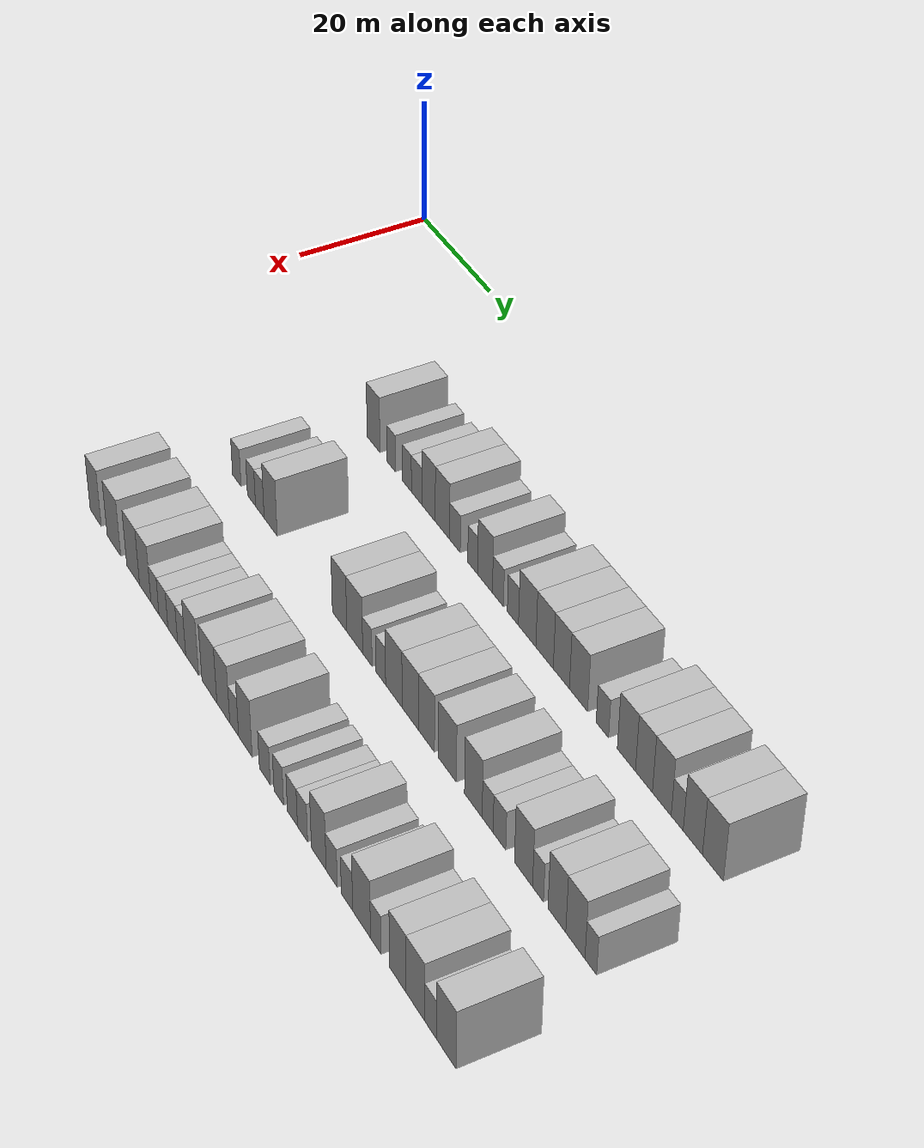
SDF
<sdf version="1.6">
 <world name="default">
  <model name="building_68">
   <static>1</static>
   <pose>25.0000 43.5240 0 0.000000 0.000000 0.000000</pose>
   <link name="link">
    <pose>0 0 4.50 0 0 0</pose>
    <collision name="collision"><geometry><box><size>10.0000 3.7559 9.0000</size></box></geometry></collision>
    <visual name="visual">
     <cast_shadows>0</cast_shadows>
     <geometry><box><size>10.0000 3.7559 9.0000</size></box></geometry>
     <material>
      <script>
       <uri>model://HANNAS_wall/materials/scripts</uri>
       <uri>model://HANNAS_wall/materials/textures</uri>
       <name>vrc/HANNAS_wall</name>
      </script>
     </material>
    </visual>
   </link>
  </model>
  <model name="building_69">
   <static>1</static>
   <pose>25.0000 48.6498 0 0.000000 0.000000 0.000000</pose>
   <link name="link">
    <pose>0 0 3.00 0 0 0</pose>
    <collision name="collision"><geometry><box><size>10.0000 2.4956 6.0000</size></box></geometry></collision>
    <visual name="visual">
     <cast_shadows>0</cast_shadows>
     <geometry><box><size>10.0000 2.4956 6.0000</size></box></geometry>
     <material>
      <script>
       <uri>model://HANNAS_wall/materials/scripts</uri>
       <uri>model://HANNAS_wall/materials/textures</uri>
       <name>vrc/HANNAS_wall</name>
      </script>
     </material>
    </visual>
   </link>
  </model>
  <model name="building_70">
   <static>1</static>
   <pose>25.0000 53.1638 0 0.000000 0.000000 0.000000</pose>
   <link name="link">
    <pose>0 0 3.00 0 0 0</pose>
    <collision name="collision"><geometry><box><size>10.0000 2.5325 6.0000</size></box></geometry></collision>
    <visual name="visual">
     <cast_shadows>0</cast_shadows>
     <geometry><box><size>10.0000 2.5325 6.0000</size></box></geometry>
     <material>
      <script>
       <uri>model://HANNAS_wall/materials/scripts</uri>
       <uri>model://HANNAS_wall/materials/textures</uri>
       <name>vrc/HANNAS_wall</name>
      </script>
     </material>
    </visual>
   </link>
  </model>
  <model name="building_71">
   <static>1</static>
   <pose>25.0000 55.8989 0 0.000000 0.000000 0.000000</pose>
   <link name="link">
    <pose>0 0 3.00 0 0 0</pose>
    <collision name="collision"><geometry><box><size>10.0000 2.9376 6.0000</size></box></geometry></collision>
    <visual name="visual">
     <cast_shadows>0</cast_shadows>
     <geometry><box><size>10.0000 2.9376 6.0000</size></box></geometry>
     <material>
      <script>
       <uri>model://HANNAS_wall/materials/scripts</uri>
       <uri>model://HANNAS_wall/materials/textures</uri>
       <name>vrc/HANNAS_wall</name>
      </script>
     </material>
    </visual>
   </link>
  </model>
  <model name="building_72">
   <static>1</static>
   <pose>25.0000 59.2158 0 0.000000 0.000000 0.000000</pose>
   <link name="link">
    <pose>0 0 4.50 0 0 0</pose>
    <collision name="collision"><geometry><box><size>10.0000 3.6962 9.0000</size></box></geometry></collision>
    <visual name="visual">
     <cast_shadows>0</cast_shadows>
     <geometry><box><size>10.0000 3.6962 9.0000</size></box></geometry>
     <material>
      <script>
       <uri>model://HANNAS_wall/materials/scripts</uri>
       <uri>model://HANNAS_wall/materials/textures</uri>
       <name>vrc/HANNAS_wall</name>
      </script>
     </material>
    </visual>
   </link>
  </model>
  <model name="building_73">
   <static>1</static>
   <pose>25.0000 63.0143 0 0.000000 0.000000 0.000000</pose>
   <link name="link">
    <pose>0 0 4.50 0 0 0</pose>
    <collision name="collision"><geometry><box><size>10.0000 3.9007 9.0000</size></box></geometry></collision>
    <visual name="visual">
     <cast_shadows>0</cast_shadows>
     <geometry><box><size>10.0000 3.9007 9.0000</size></box></geometry>
     <material>
      <script>
       <uri>model://HANNAS_wall/materials/scripts</uri>
       <uri>model://HANNAS_wall/materials/textures</uri>
       <name>vrc/HANNAS_wall</name>
      </script>
     </material>
    </visual>
   </link>
  </model>
  <model name="building_74">
   <static>1</static>
   <pose>25.0000 66.4072 0 0.000000 0.000000 0.000000</pose>
   <link name="link">
    <pose>0 0 3.00 0 0 0</pose>
    <collision name="collision"><geometry><box><size>10.0000 2.8851 6.0000</size></box></geometry></collision>
    <visual name="visual">
     <cast_shadows>0</cast_shadows>
     <geometry><box><size>10.0000 2.8851 6.0000</size></box></geometry>
     <material>
      <script>
       <uri>model://HANNAS_wall/materials/scripts</uri>
       <uri>model://HANNAS_wall/materials/textures</uri>
       <name>vrc/HANNAS_wall</name>
      </script>
     </material>
    </visual>
   </link>
  </model>
  <model name="building_75">
   <static>1</static>
   <pose>25.0000 71.1329 0 0.000000 0.000000 0.000000</pose>
   <link name="link">
    <pose>0 0 3.00 0 0 0</pose>
    <collision name="collision"><geometry><box><size>10.0000 2.5662 6.0000</size></box></geometry></collision>
    <visual name="visual">
     <cast_shadows>0</cast_shadows>
     <geometry><box><size>10.0000 2.5662 6.0000</size></box></geometry>
     <material>
      <script>
       <uri>model://HANNAS_wall/materials/scripts</uri>
       <uri>model://HANNAS_wall/materials/textures</uri>
       <name>vrc/HANNAS_wall</name>
      </script>
     </material>
    </visual>
   </link>
  </model>
  <model name="building_76">
   <static>1</static>
   <pose>25.0000 74.3617 0 0.000000 0.000000 0.000000</pose>
   <link name="link">
    <pose>0 0 4.50 0 0 0</pose>
    <collision name="collision"><geometry><box><size>10.0000 3.8914 9.0000</size></box></geometry></collision>
    <visual name="visual">
     <cast_shadows>0</cast_shadows>
     <geometry><box><size>10.0000 3.8914 9.0000</size></box></geometry>
     <material>
      <script>
       <uri>model://HANNAS_wall/materials/scripts</uri>
       <uri>model://HANNAS_wall/materials/textures</uri>
       <name>vrc/HANNAS_wall</name>
      </script>
     </material>
    </visual>
   </link>
  </model>
  <model name="building_77">
   <static>1</static>
   <pose>25.0000 77.7268 0 0.000000 0.000000 0.000000</pose>
   <link name="link">
    <pose>0 0 3.00 0 0 0</pose>
    <collision name="collision"><geometry><box><size>10.0000 2.8389 6.0000</size></box></geometry></collision>
    <visual name="visual">
     <cast_shadows>0</cast_shadows>
     <geometry><box><size>10.0000 2.8389 6.0000</size></box></geometry>
     <material>
      <script>
       <uri>model://HANNAS_wall/materials/scripts</uri>
       <uri>model://HANNAS_wall/materials/textures</uri>
       <name>vrc/HANNAS_wall</name>
      </script>
     </material>
    </visual>
   </link>
  </model>
  <model name="building_78">
   <static>1</static>
   <pose>25.0000 81.5489 0 0.000000 0.000000 0.000000</pose>
   <link name="link">
    <pose>0 0 3.00 0 0 0</pose>
    <collision name="collision"><geometry><box><size>10.0000 2.8052 6.0000</size></box></geometry></collision>
    <visual name="visual">
     <cast_shadows>0</cast_shadows>
     <geometry><box><size>10.0000 2.8052 6.0000</size></box></geometry>
     <material>
      <script>
       <uri>model://HANNAS_wall/materials/scripts</uri>
       <uri>model://HANNAS_wall/materials/textures</uri>
       <name>vrc/HANNAS_wall</name>
      </script>
     </material>
    </visual>
   </link>
  </model>
  <model name="building_79">
   <static>1</static>
   <pose>25.0000 85.1186 0 0.000000 0.000000 0.000000</pose>
   <link name="link">
    <pose>0 0 4.50 0 0 0</pose>
    <collision name="collision"><geometry><box><size>10.0000 4.3343 9.0000</size></box></geometry></collision>
    <visual name="visual">
     <cast_shadows>0</cast_shadows>
     <geometry><box><size>10.0000 4.3343 9.0000</size></box></geometry>
     <material>
      <script>
       <uri>model://HANNAS_wall/materials/scripts</uri>
       <uri>model://HANNAS_wall/materials/textures</uri>
       <name>vrc/HANNAS_wall</name>
      </script>
     </material>
    </visual>
   </link>
  </model>
  <model name="building_80">
   <static>1</static>
   <pose>25.0000 89.4194 0 0.000000 0.000000 0.000000</pose>
   <link name="link">
    <pose>0 0 4.50 0 0 0</pose>
    <collision name="collision"><geometry><box><size>10.0000 4.2675 9.0000</size></box></geometry></collision>
    <visual name="visual">
     <cast_shadows>0</cast_shadows>
     <geometry><box><size>10.0000 4.2675 9.0000</size></box></geometry>
     <material>
      <script>
       <uri>model://HANNAS_wall/materials/scripts</uri>
       <uri>model://HANNAS_wall/materials/textures</uri>
       <name>vrc/HANNAS_wall</name>
      </script>
     </material>
    </visual>
   </link>
  </model>
  <model name="building_81">
   <static>1</static>
   <pose>25.0000 93.4968 0 0.000000 0.000000 0.000000</pose>
   <link name="link">
    <pose>0 0 4.50 0 0 0</pose>
    <collision name="collision"><geometry><box><size>10.0000 3.8871 9.0000</size></box></geometry></collision>
    <visual name="visual">
     <cast_shadows>0</cast_shadows>
     <geometry><box><size>10.0000 3.8871 9.0000</size></box></geometry>
     <material>
      <script>
       <uri>model://HANNAS_wall/materials/scripts</uri>
       <uri>model://HANNAS_wall/materials/textures</uri>
       <name>vrc/HANNAS_wall</name>
      </script>
     </material>
    </visual>
   </link>
  </model>
  <model name="building_82">
   <static>1</static>
   <pose>25.0000 97.5959 0 0.000000 0.000000 0.000000</pose>
   <link name="link">
    <pose>0 0 4.50 0 0 0</pose>
    <collision name="collision"><geometry><box><size>10.0000 4.3111 9.0000</size></box></geometry></collision>
    <visual name="visual">
     <cast_shadows>0</cast_shadows>
     <geometry><box><size>10.0000 4.3111 9.0000</size></box></geometry>
     <material>
      <script>
       <uri>model://HANNAS_wall/materials/scripts</uri>
       <uri>model://HANNAS_wall/materials/textures</uri>
       <name>vrc/HANNAS_wall</name>
      </script>
     </material>
    </visual>
   </link>
  </model>
  <model name="building_83">
   <static>1</static>
   <pose>25.0000 103.1786 0 0.000000 0.000000 0.000000</pose>
   <link name="link">
    <pose>0 0 3.00 0 0 0</pose>
    <collision name="collision"><geometry><box><size>10.0000 2.8544 6.0000</size></box></geometry></collision>
    <visual name="visual">
     <cast_shadows>0</cast_shadows>
     <geometry><box><size>10.0000 2.8544 6.0000</size></box></geometry>
     <material>
      <script>
       <uri>model://HANNAS_wall/materials/scripts</uri>
       <uri>model://HANNAS_wall/materials/textures</uri>
       <name>vrc/HANNAS_wall</name>
      </script>
     </material>
    </visual>
   </link>
  </model>
  <model name="building_84">
   <static>1</static>
   <pose>25.0000 108.6445 0 0.000000 0.000000 0.000000</pose>
   <link name="link">
    <pose>0 0 4.50 0 0 0</pose>
    <collision name="collision"><geometry><box><size>10.0000 4.0773 9.0000</size></box></geometry></collision>
    <visual name="visual">
     <cast_shadows>0</cast_shadows>
     <geometry><box><size>10.0000 4.0773 9.0000</size></box></geometry>
     <material>
      <script>
       <uri>model://HANNAS_wall/materials/scripts</uri>
       <uri>model://HANNAS_wall/materials/textures</uri>
       <name>vrc/HANNAS_wall</name>
      </script>
     </material>
    </visual>
   </link>
  </model>
  <model name="building_85">
   <static>1</static>
   <pose>25.0000 112.5659 0 0.000000 0.000000 0.000000</pose>
   <link name="link">
    <pose>0 0 4.50 0 0 0</pose>
    <collision name="collision"><geometry><box><size>10.0000 3.7657 9.0000</size></box></geometry></collision>
    <visual name="visual">
     <cast_shadows>0</cast_shadows>
     <geometry><box><size>10.0000 3.7657 9.0000</size></box></geometry>
     <material>
      <script>
       <uri>model://HANNAS_wall/materials/scripts</uri>
       <uri>model://HANNAS_wall/materials/textures</uri>
       <name>vrc/HANNAS_wall</name>
      </script>
     </material>
    </visual>
   </link>
  </model>
  <model name="building_86">
   <static>1</static>
   <pose>25.0000 116.4898 0 0.000000 0.000000 0.000000</pose>
   <link name="link">
    <pose>0 0 4.50 0 0 0</pose>
    <collision name="collision"><geometry><box><size>10.0000 4.0821 9.0000</size></box></geometry></collision>
    <visual name="visual">
     <cast_shadows>0</cast_shadows>
     <geometry><box><size>10.0000 4.0821 9.0000</size></box></geometry>
     <material>
      <script>
       <uri>model://HANNAS_wall/materials/scripts</uri>
       <uri>model://HANNAS_wall/materials/textures</uri>
       <name>vrc/HANNAS_wall</name>
      </script>
     </material>
    </visual>
   </link>
  </model>
  <model name="building_87">
   <static>1</static>
   <pose>25.0000 119.8188 0 0.000000 0.000000 0.000000</pose>
   <link name="link">
    <pose>0 0 3.00 0 0 0</pose>
    <collision name="collision"><geometry><box><size>10.0000 2.5759 6.0000</size></box></geometry></collision>
    <visual name="visual">
     <cast_shadows>0</cast_shadows>
     <geometry><box><size>10.0000 2.5759 6.0000</size></box></geometry>
     <material>
      <script>
       <uri>model://HANNAS_wall/materials/scripts</uri>
       <uri>model://HANNAS_wall/materials/textures</uri>
       <name>vrc/HANNAS_wall</name>
      </script>
     </material>
    </visual>
   </link>
  </model>
  <model name="building_88">
   <static>1</static>
   <pose>25.0000 123.1413 0 0.000000 0.000000 0.000000</pose>
   <link name="link">
    <pose>0 0 4.50 0 0 0</pose>
    <collision name="collision"><geometry><box><size>10.0000 4.0691 9.0000</size></box></geometry></collision>
    <visual name="visual">
     <cast_shadows>0</cast_shadows>
     <geometry><box><size>10.0000 4.0691 9.0000</size></box></geometry>
     <material>
      <script>
       <uri>model://HANNAS_wall/materials/scripts</uri>
       <uri>model://HANNAS_wall/materials/textures</uri>
       <name>vrc/HANNAS_wall</name>
      </script>
     </material>
    </visual>
   </link>
  </model>
  <model name="building_89">
   <static>1</static>
   <pose>25.0000 127.3492 0 0.000000 0.000000 0.000000</pose>
   <link name="link">
    <pose>0 0 4.50 0 0 0</pose>
    <collision name="collision"><geometry><box><size>10.0000 4.3468 9.0000</size></box></geometry></collision>
    <visual name="visual">
     <cast_shadows>0</cast_shadows>
     <geometry><box><size>10.0000 4.3468 9.0000</size></box></geometry>
     <material>
      <script>
       <uri>model://HANNAS_wall/materials/scripts</uri>
       <uri>model://HANNAS_wall/materials/textures</uri>
       <name>vrc/HANNAS_wall</name>
      </script>
     </material>
    </visual>
   </link>
  </model>
  <model name="building_182">
   <static>1</static>
   <pose>44.0000 42.1133 0 0.000000 0.000000 0.000000</pose>
   <link name="link">
    <pose>0 0 3.00 0 0 0</pose>
    <collision name="collision"><geometry><box><size>10.0000 2.6583 6.0000</size></box></geometry></collision>
    <visual name="visual">
     <cast_shadows>0</cast_shadows>
     <geometry><box><size>10.0000 2.6583 6.0000</size></box></geometry>
     <material>
      <script>
       <uri>model://HANNAS_wall/materials/scripts</uri>
       <uri>model://HANNAS_wall/materials/textures</uri>
       <name>vrc/HANNAS_wall</name>
      </script>
     </material>
    </visual>
   </link>
  </model>
  <model name="building_183">
   <static>1</static>
   <pose>44.0000 46.6825 0 0.000000 0.000000 0.000000</pose>
   <link name="link">
    <pose>0 0 3.00 0 0 0</pose>
    <collision name="collision"><geometry><box><size>10.0000 2.4799 6.0000</size></box></geometry></collision>
    <visual name="visual">
     <cast_shadows>0</cast_shadows>
     <geometry><box><size>10.0000 2.4799 6.0000</size></box></geometry>
     <material>
      <script>
       <uri>model://HANNAS_wall/materials/scripts</uri>
       <uri>model://HANNAS_wall/materials/textures</uri>
       <name>vrc/HANNAS_wall</name>
      </script>
     </material>
    </visual>
   </link>
  </model>
  <model name="building_184">
   <static>1</static>
   <pose>44.0000 49.2358 0 0.000000 0.000000 0.000000</pose>
   <link name="link">
    <pose>0 0 3.00 0 0 0</pose>
    <collision name="collision"><geometry><box><size>10.0000 2.6266 6.0000</size></box></geometry></collision>
    <visual name="visual">
     <cast_shadows>0</cast_shadows>
     <geometry><box><size>10.0000 2.6266 6.0000</size></box></geometry>
     <material>
      <script>
       <uri>model://HANNAS_wall/materials/scripts</uri>
       <uri>model://HANNAS_wall/materials/textures</uri>
       <name>vrc/HANNAS_wall</name>
      </script>
     </material>
    </visual>
   </link>
  </model>
  <model name="building_185">
   <static>1</static>
   <pose>44.0000 52.5109 0 0.000000 0.000000 0.000000</pose>
   <link name="link">
    <pose>0 0 4.50 0 0 0</pose>
    <collision name="collision"><geometry><box><size>10.0000 3.9237 9.0000</size></box></geometry></collision>
    <visual name="visual">
     <cast_shadows>0</cast_shadows>
     <geometry><box><size>10.0000 3.9237 9.0000</size></box></geometry>
     <material>
      <script>
       <uri>model://HANNAS_wall/materials/scripts</uri>
       <uri>model://HANNAS_wall/materials/textures</uri>
       <name>vrc/HANNAS_wall</name>
      </script>
     </material>
    </visual>
   </link>
  </model>
  <model name="building_186">
   <static>1</static>
   <pose>44.0000 72.4754 0 0.000000 0.000000 0.000000</pose>
   <link name="link">
    <pose>0 0 4.50 0 0 0</pose>
    <collision name="collision"><geometry><box><size>10.0000 4.0018 9.0000</size></box></geometry></collision>
    <visual name="visual">
     <cast_shadows>0</cast_shadows>
     <geometry><box><size>10.0000 4.0018 9.0000</size></box></geometry>
     <material>
      <script>
       <uri>model://HANNAS_wall/materials/scripts</uri>
       <uri>model://HANNAS_wall/materials/textures</uri>
       <name>vrc/HANNAS_wall</name>
      </script>
     </material>
    </visual>
   </link>
  </model>
  <model name="building_187">
   <static>1</static>
   <pose>44.0000 76.6411 0 0.000000 0.000000 0.000000</pose>
   <link name="link">
    <pose>0 0 4.50 0 0 0</pose>
    <collision name="collision"><geometry><box><size>10.0000 4.3297 9.0000</size></box></geometry></collision>
    <visual name="visual">
     <cast_shadows>0</cast_shadows>
     <geometry><box><size>10.0000 4.3297 9.0000</size></box></geometry>
     <material>
      <script>
       <uri>model://HANNAS_wall/materials/scripts</uri>
       <uri>model://HANNAS_wall/materials/textures</uri>
       <name>vrc/HANNAS_wall</name>
      </script>
     </material>
    </visual>
   </link>
  </model>
  <model name="building_188">
   <static>1</static>
   <pose>44.0000 80.0658 0 0.000000 0.000000 0.000000</pose>
   <link name="link">
    <pose>0 0 3.00 0 0 0</pose>
    <collision name="collision"><geometry><box><size>10.0000 2.5197 6.0000</size></box></geometry></collision>
    <visual name="visual">
     <cast_shadows>0</cast_shadows>
     <geometry><box><size>10.0000 2.5197 6.0000</size></box></geometry>
     <material>
      <script>
       <uri>model://HANNAS_wall/materials/scripts</uri>
       <uri>model://HANNAS_wall/materials/textures</uri>
       <name>vrc/HANNAS_wall</name>
      </script>
     </material>
    </visual>
   </link>
  </model>
  <model name="building_189">
   <static>1</static>
   <pose>44.0000 83.6234 0 0.000000 0.000000 0.000000</pose>
   <link name="link">
    <pose>0 0 3.00 0 0 0</pose>
    <collision name="collision"><geometry><box><size>10.0000 2.5956 6.0000</size></box></geometry></collision>
    <visual name="visual">
     <cast_shadows>0</cast_shadows>
     <geometry><box><size>10.0000 2.5956 6.0000</size></box></geometry>
     <material>
      <script>
       <uri>model://HANNAS_wall/materials/scripts</uri>
       <uri>model://HANNAS_wall/materials/textures</uri>
       <name>vrc/HANNAS_wall</name>
      </script>
     </material>
    </visual>
   </link>
  </model>
  <model name="building_190">
   <static>1</static>
   <pose>44.0000 87.0764 0 0.000000 0.000000 0.000000</pose>
   <link name="link">
    <pose>0 0 4.50 0 0 0</pose>
    <collision name="collision"><geometry><box><size>10.0000 4.3103 9.0000</size></box></geometry></collision>
    <visual name="visual">
     <cast_shadows>0</cast_shadows>
     <geometry><box><size>10.0000 4.3103 9.0000</size></box></geometry>
     <material>
      <script>
       <uri>model://HANNAS_wall/materials/scripts</uri>
       <uri>model://HANNAS_wall/materials/textures</uri>
       <name>vrc/HANNAS_wall</name>
      </script>
     </material>
    </visual>
   </link>
  </model>
  <model name="building_191">
   <static>1</static>
   <pose>44.0000 91.3071 0 0.000000 0.000000 0.000000</pose>
   <link name="link">
    <pose>0 0 4.50 0 0 0</pose>
    <collision name="collision"><geometry><box><size>10.0000 4.1511 9.0000</size></box></geometry></collision>
    <visual name="visual">
     <cast_shadows>0</cast_shadows>
     <geometry><box><size>10.0000 4.1511 9.0000</size></box></geometry>
     <material>
      <script>
       <uri>model://HANNAS_wall/materials/scripts</uri>
       <uri>model://HANNAS_wall/materials/textures</uri>
       <name>vrc/HANNAS_wall</name>
      </script>
     </material>
    </visual>
   </link>
  </model>
  <model name="building_192">
   <static>1</static>
   <pose>44.0000 95.4170 0 0.000000 0.000000 0.000000</pose>
   <link name="link">
    <pose>0 0 4.50 0 0 0</pose>
    <collision name="collision"><geometry><box><size>10.0000 4.0686 9.0000</size></box></geometry></collision>
    <visual name="visual">
     <cast_shadows>0</cast_shadows>
     <geometry><box><size>10.0000 4.0686 9.0000</size></box></geometry>
     <material>
      <script>
       <uri>model://HANNAS_wall/materials/scripts</uri>
       <uri>model://HANNAS_wall/materials/textures</uri>
       <name>vrc/HANNAS_wall</name>
      </script>
     </material>
    </visual>
   </link>
  </model>
  <model name="building_193">
   <static>1</static>
   <pose>44.0000 100.6448 0 0.000000 0.000000 0.000000</pose>
   <link name="link">
    <pose>0 0 4.50 0 0 0</pose>
    <collision name="collision"><geometry><box><size>10.0000 4.3871 9.0000</size></box></geometry></collision>
    <visual name="visual">
     <cast_shadows>0</cast_shadows>
     <geometry><box><size>10.0000 4.3871 9.0000</size></box></geometry>
     <material>
      <script>
       <uri>model://HANNAS_wall/materials/scripts</uri>
       <uri>model://HANNAS_wall/materials/textures</uri>
       <name>vrc/HANNAS_wall</name>
      </script>
     </material>
    </visual>
   </link>
  </model>
  <model name="building_194">
   <static>1</static>
   <pose>44.0000 106.9414 0 0.000000 0.000000 0.000000</pose>
   <link name="link">
    <pose>0 0 4.50 0 0 0</pose>
    <collision name="collision"><geometry><box><size>10.0000 4.2062 9.0000</size></box></geometry></collision>
    <visual name="visual">
     <cast_shadows>0</cast_shadows>
     <geometry><box><size>10.0000 4.2062 9.0000</size></box></geometry>
     <material>
      <script>
       <uri>model://HANNAS_wall/materials/scripts</uri>
       <uri>model://HANNAS_wall/materials/textures</uri>
       <name>vrc/HANNAS_wall</name>
      </script>
     </material>
    </visual>
   </link>
  </model>
  <model name="building_195">
   <static>1</static>
   <pose>44.0000 110.3412 0 0.000000 0.000000 0.000000</pose>
   <link name="link">
    <pose>0 0 3.00 0 0 0</pose>
    <collision name="collision"><geometry><box><size>10.0000 2.5932 6.0000</size></box></geometry></collision>
    <visual name="visual">
     <cast_shadows>0</cast_shadows>
     <geometry><box><size>10.0000 2.5932 6.0000</size></box></geometry>
     <material>
      <script>
       <uri>model://HANNAS_wall/materials/scripts</uri>
       <uri>model://HANNAS_wall/materials/textures</uri>
       <name>vrc/HANNAS_wall</name>
      </script>
     </material>
    </visual>
   </link>
  </model>
  <model name="building_196">
   <static>1</static>
   <pose>44.0000 113.1111 0 0.000000 0.000000 0.000000</pose>
   <link name="link">
    <pose>0 0 3.00 0 0 0</pose>
    <collision name="collision"><geometry><box><size>10.0000 2.9467 6.0000</size></box></geometry></collision>
    <visual name="visual">
     <cast_shadows>0</cast_shadows>
     <geometry><box><size>10.0000 2.9467 6.0000</size></box></geometry>
     <material>
      <script>
       <uri>model://HANNAS_wall/materials/scripts</uri>
       <uri>model://HANNAS_wall/materials/textures</uri>
       <name>vrc/HANNAS_wall</name>
      </script>
     </material>
    </visual>
   </link>
  </model>
  <model name="building_197">
   <static>1</static>
   <pose>44.0000 118.6424 0 0.000000 0.000000 0.000000</pose>
   <link name="link">
    <pose>0 0 4.50 0 0 0</pose>
    <collision name="collision"><geometry><box><size>10.0000 4.1157 9.0000</size></box></geometry></collision>
    <visual name="visual">
     <cast_shadows>0</cast_shadows>
     <geometry><box><size>10.0000 4.1157 9.0000</size></box></geometry>
     <material>
      <script>
       <uri>model://HANNAS_wall/materials/scripts</uri>
       <uri>model://HANNAS_wall/materials/textures</uri>
       <name>vrc/HANNAS_wall</name>
      </script>
     </material>
    </visual>
   </link>
  </model>
  <model name="building_198">
   <static>1</static>
   <pose>44.0000 121.9241 0 0.000000 0.000000 0.000000</pose>
   <link name="link">
    <pose>0 0 3.00 0 0 0</pose>
    <collision name="collision"><geometry><box><size>10.0000 2.4476 6.0000</size></box></geometry></collision>
    <visual name="visual">
     <cast_shadows>0</cast_shadows>
     <geometry><box><size>10.0000 2.4476 6.0000</size></box></geometry>
     <material>
      <script>
       <uri>model://HANNAS_wall/materials/scripts</uri>
       <uri>model://HANNAS_wall/materials/textures</uri>
       <name>vrc/HANNAS_wall</name>
      </script>
     </material>
    </visual>
   </link>
  </model>
  <model name="building_199">
   <static>1</static>
   <pose>44.0000 126.1012 0 0.000000 0.000000 0.000000</pose>
   <link name="link">
    <pose>0 0 4.50 0 0 0</pose>
    <collision name="collision"><geometry><box><size>10.0000 3.9067 9.0000</size></box></geometry></collision>
    <visual name="visual">
     <cast_shadows>0</cast_shadows>
     <geometry><box><size>10.0000 3.9067 9.0000</size></box></geometry>
     <material>
      <script>
       <uri>model://HANNAS_wall/materials/scripts</uri>
       <uri>model://HANNAS_wall/materials/textures</uri>
       <name>vrc/HANNAS_wall</name>
      </script>
     </material>
    </visual>
   </link>
  </model>
  <model name="building_200">
   <static>1</static>
   <pose>44.0000 130.1233 0 0.000000 0.000000 0.000000</pose>
   <link name="link">
    <pose>0 0 4.50 0 0 0</pose>
    <collision name="collision"><geometry><box><size>10.0000 4.1374 9.0000</size></box></geometry></collision>
    <visual name="visual">
     <cast_shadows>0</cast_shadows>
     <geometry><box><size>10.0000 4.1374 9.0000</size></box></geometry>
     <material>
      <script>
       <uri>model://HANNAS_wall/materials/scripts</uri>
       <uri>model://HANNAS_wall/materials/textures</uri>
       <name>vrc/HANNAS_wall</name>
      </script>
     </material>
    </visual>
   </link>
  </model>
  <model name="building_201">
   <static>1</static>
   <pose>44.0000 133.4282 0 0.000000 0.000000 0.000000</pose>
   <link name="link">
    <pose>0 0 3.00 0 0 0</pose>
    <collision name="collision"><geometry><box><size>10.0000 2.4723 6.0000</size></box></geometry></collision>
    <visual name="visual">
     <cast_shadows>0</cast_shadows>
     <geometry><box><size>10.0000 2.4723 6.0000</size></box></geometry>
     <material>
      <script>
       <uri>model://HANNAS_wall/materials/scripts</uri>
       <uri>model://HANNAS_wall/materials/textures</uri>
       <name>vrc/HANNAS_wall</name>
      </script>
     </material>
    </visual>
   </link>
  </model>
  <model name="building_291">
   <static>1</static>
   <pose>63.0000 40.7460 0 0.000000 0.000000 0.000000</pose>
   <link name="link">
    <pose>0 0 4.50 0 0 0</pose>
    <collision name="collision"><geometry><box><size>10.0000 3.7141 9.0000</size></box></geometry></collision>
    <visual name="visual">
     <cast_shadows>0</cast_shadows>
     <geometry><box><size>10.0000 3.7141 9.0000</size></box></geometry>
     <material>
      <script>
       <uri>model://HANNAS_wall/materials/scripts</uri>
       <uri>model://HANNAS_wall/materials/textures</uri>
       <name>vrc/HANNAS_wall</name>
      </script>
     </material>
    </visual>
   </link>
  </model>
  <model name="building_292">
   <static>1</static>
   <pose>63.0000 46.8214 0 0.000000 0.000000 0.000000</pose>
   <link name="link">
    <pose>0 0 4.50 0 0 0</pose>
    <collision name="collision"><geometry><box><size>10.0000 4.4366 9.0000</size></box></geometry></collision>
    <visual name="visual">
     <cast_shadows>0</cast_shadows>
     <geometry><box><size>10.0000 4.4366 9.0000</size></box></geometry>
     <material>
      <script>
       <uri>model://HANNAS_wall/materials/scripts</uri>
       <uri>model://HANNAS_wall/materials/textures</uri>
       <name>vrc/HANNAS_wall</name>
      </script>
     </material>
    </visual>
   </link>
  </model>
  <model name="building_293">
   <static>1</static>
   <pose>63.0000 53.0911 0 0.000000 0.000000 0.000000</pose>
   <link name="link">
    <pose>0 0 4.50 0 0 0</pose>
    <collision name="collision"><geometry><box><size>10.0000 4.1028 9.0000</size></box></geometry></collision>
    <visual name="visual">
     <cast_shadows>0</cast_shadows>
     <geometry><box><size>10.0000 4.1028 9.0000</size></box></geometry>
     <material>
      <script>
       <uri>model://HANNAS_wall/materials/scripts</uri>
       <uri>model://HANNAS_wall/materials/textures</uri>
       <name>vrc/HANNAS_wall</name>
      </script>
     </material>
    </visual>
   </link>
  </model>
  <model name="building_294">
   <static>1</static>
   <pose>63.0000 56.9492 0 0.000000 0.000000 0.000000</pose>
   <link name="link">
    <pose>0 0 4.50 0 0 0</pose>
    <collision name="collision"><geometry><box><size>10.0000 3.6133 9.0000</size></box></geometry></collision>
    <visual name="visual">
     <cast_shadows>0</cast_shadows>
     <geometry><box><size>10.0000 3.6133 9.0000</size></box></geometry>
     <material>
      <script>
       <uri>model://HANNAS_wall/materials/scripts</uri>
       <uri>model://HANNAS_wall/materials/textures</uri>
       <name>vrc/HANNAS_wall</name>
      </script>
     </material>
    </visual>
   </link>
  </model>
  <model name="building_295">
   <static>1</static>
   <pose>63.0000 60.0070 0 0.000000 0.000000 0.000000</pose>
   <link name="link">
    <pose>0 0 3.00 0 0 0</pose>
    <collision name="collision"><geometry><box><size>10.0000 2.5023 6.0000</size></box></geometry></collision>
    <visual name="visual">
     <cast_shadows>0</cast_shadows>
     <geometry><box><size>10.0000 2.5023 6.0000</size></box></geometry>
     <material>
      <script>
       <uri>model://HANNAS_wall/materials/scripts</uri>
       <uri>model://HANNAS_wall/materials/textures</uri>
       <name>vrc/HANNAS_wall</name>
      </script>
     </material>
    </visual>
   </link>
  </model>
  <model name="building_296">
   <static>1</static>
   <pose>63.0000 62.6472 0 0.000000 0.000000 0.000000</pose>
   <link name="link">
    <pose>0 0 3.00 0 0 0</pose>
    <collision name="collision"><geometry><box><size>10.0000 2.7782 6.0000</size></box></geometry></collision>
    <visual name="visual">
     <cast_shadows>0</cast_shadows>
     <geometry><box><size>10.0000 2.7782 6.0000</size></box></geometry>
     <material>
      <script>
       <uri>model://HANNAS_wall/materials/scripts</uri>
       <uri>model://HANNAS_wall/materials/textures</uri>
       <name>vrc/HANNAS_wall</name>
      </script>
     </material>
    </visual>
   </link>
  </model>
  <model name="building_297">
   <static>1</static>
   <pose>63.0000 65.5129 0 0.000000 0.000000 0.000000</pose>
   <link name="link">
    <pose>0 0 3.00 0 0 0</pose>
    <collision name="collision"><geometry><box><size>10.0000 2.9532 6.0000</size></box></geometry></collision>
    <visual name="visual">
     <cast_shadows>0</cast_shadows>
     <geometry><box><size>10.0000 2.9532 6.0000</size></box></geometry>
     <material>
      <script>
       <uri>model://HANNAS_wall/materials/scripts</uri>
       <uri>model://HANNAS_wall/materials/textures</uri>
       <name>vrc/HANNAS_wall</name>
      </script>
     </material>
    </visual>
   </link>
  </model>
  <model name="building_298">
   <static>1</static>
   <pose>63.0000 68.2112 0 0.000000 0.000000 0.000000</pose>
   <link name="link">
    <pose>0 0 3.00 0 0 0</pose>
    <collision name="collision"><geometry><box><size>10.0000 2.4435 6.0000</size></box></geometry></collision>
    <visual name="visual">
     <cast_shadows>0</cast_shadows>
     <geometry><box><size>10.0000 2.4435 6.0000</size></box></geometry>
     <material>
      <script>
       <uri>model://HANNAS_wall/materials/scripts</uri>
       <uri>model://HANNAS_wall/materials/textures</uri>
       <name>vrc/HANNAS_wall</name>
      </script>
     </material>
    </visual>
   </link>
  </model>
  <model name="building_299">
   <static>1</static>
   <pose>63.0000 71.3537 0 0.000000 0.000000 0.000000</pose>
   <link name="link">
    <pose>0 0 4.50 0 0 0</pose>
    <collision name="collision"><geometry><box><size>10.0000 3.8415 9.0000</size></box></geometry></collision>
    <visual name="visual">
     <cast_shadows>0</cast_shadows>
     <geometry><box><size>10.0000 3.8415 9.0000</size></box></geometry>
     <material>
      <script>
       <uri>model://HANNAS_wall/materials/scripts</uri>
       <uri>model://HANNAS_wall/materials/textures</uri>
       <name>vrc/HANNAS_wall</name>
      </script>
     </material>
    </visual>
   </link>
  </model>
  <model name="building_300">
   <static>1</static>
   <pose>63.0000 76.4568 0 0.000000 0.000000 0.000000</pose>
   <link name="link">
    <pose>0 0 4.50 0 0 0</pose>
    <collision name="collision"><geometry><box><size>10.0000 4.3645 9.0000</size></box></geometry></collision>
    <visual name="visual">
     <cast_shadows>0</cast_shadows>
     <geometry><box><size>10.0000 4.3645 9.0000</size></box></geometry>
     <material>
      <script>
       <uri>model://HANNAS_wall/materials/scripts</uri>
       <uri>model://HANNAS_wall/materials/textures</uri>
       <name>vrc/HANNAS_wall</name>
      </script>
     </material>
    </visual>
   </link>
  </model>
  <model name="building_301">
   <static>1</static>
   <pose>63.0000 80.4840 0 0.000000 0.000000 0.000000</pose>
   <link name="link">
    <pose>0 0 4.50 0 0 0</pose>
    <collision name="collision"><geometry><box><size>10.0000 3.6900 9.0000</size></box></geometry></collision>
    <visual name="visual">
     <cast_shadows>0</cast_shadows>
     <geometry><box><size>10.0000 3.6900 9.0000</size></box></geometry>
     <material>
      <script>
       <uri>model://HANNAS_wall/materials/scripts</uri>
       <uri>model://HANNAS_wall/materials/textures</uri>
       <name>vrc/HANNAS_wall</name>
      </script>
     </material>
    </visual>
   </link>
  </model>
  <model name="building_302">
   <static>1</static>
   <pose>63.0000 83.5817 0 0.000000 0.000000 0.000000</pose>
   <link name="link">
    <pose>0 0 3.00 0 0 0</pose>
    <collision name="collision"><geometry><box><size>10.0000 2.5055 6.0000</size></box></geometry></collision>
    <visual name="visual">
     <cast_shadows>0</cast_shadows>
     <geometry><box><size>10.0000 2.5055 6.0000</size></box></geometry>
     <material>
      <script>
       <uri>model://HANNAS_wall/materials/scripts</uri>
       <uri>model://HANNAS_wall/materials/textures</uri>
       <name>vrc/HANNAS_wall</name>
      </script>
     </material>
    </visual>
   </link>
  </model>
  <model name="building_303">
   <static>1</static>
   <pose>63.0000 86.7234 0 0.000000 0.000000 0.000000</pose>
   <link name="link">
    <pose>0 0 4.50 0 0 0</pose>
    <collision name="collision"><geometry><box><size>10.0000 3.7778 9.0000</size></box></geometry></collision>
    <visual name="visual">
     <cast_shadows>0</cast_shadows>
     <geometry><box><size>10.0000 3.7778 9.0000</size></box></geometry>
     <material>
      <script>
       <uri>model://HANNAS_wall/materials/scripts</uri>
       <uri>model://HANNAS_wall/materials/textures</uri>
       <name>vrc/HANNAS_wall</name>
      </script>
     </material>
    </visual>
   </link>
  </model>
  <model name="building_304">
   <static>1</static>
   <pose>63.0000 92.0983 0 0.000000 0.000000 0.000000</pose>
   <link name="link">
    <pose>0 0 3.00 0 0 0</pose>
    <collision name="collision"><geometry><box><size>10.0000 2.9719 6.0000</size></box></geometry></collision>
    <visual name="visual">
     <cast_shadows>0</cast_shadows>
     <geometry><box><size>10.0000 2.9719 6.0000</size></box></geometry>
     <material>
      <script>
       <uri>model://HANNAS_wall/materials/scripts</uri>
       <uri>model://HANNAS_wall/materials/textures</uri>
       <name>vrc/HANNAS_wall</name>
      </script>
     </material>
    </visual>
   </link>
  </model>
  <model name="building_305">
   <static>1</static>
   <pose>63.0000 95.8738 0 0.000000 0.000000 0.000000</pose>
   <link name="link">
    <pose>0 0 3.00 0 0 0</pose>
    <collision name="collision"><geometry><box><size>10.0000 2.5791 6.0000</size></box></geometry></collision>
    <visual name="visual">
     <cast_shadows>0</cast_shadows>
     <geometry><box><size>10.0000 2.5791 6.0000</size></box></geometry>
     <material>
      <script>
       <uri>model://HANNAS_wall/materials/scripts</uri>
       <uri>model://HANNAS_wall/materials/textures</uri>
       <name>vrc/HANNAS_wall</name>
      </script>
     </material>
    </visual>
   </link>
  </model>
  <model name="building_306">
   <static>1</static>
   <pose>63.0000 99.4911 0 0.000000 0.000000 0.000000</pose>
   <link name="link">
    <pose>0 0 3.00 0 0 0</pose>
    <collision name="collision"><geometry><box><size>10.0000 2.6554 6.0000</size></box></geometry></collision>
    <visual name="visual">
     <cast_shadows>0</cast_shadows>
     <geometry><box><size>10.0000 2.6554 6.0000</size></box></geometry>
     <material>
      <script>
       <uri>model://HANNAS_wall/materials/scripts</uri>
       <uri>model://HANNAS_wall/materials/textures</uri>
       <name>vrc/HANNAS_wall</name>
      </script>
     </material>
    </visual>
   </link>
  </model>
  <model name="building_307">
   <static>1</static>
   <pose>63.0000 102.1343 0 0.000000 0.000000 0.000000</pose>
   <link name="link">
    <pose>0 0 3.00 0 0 0</pose>
    <collision name="collision"><geometry><box><size>10.0000 2.6311 6.0000</size></box></geometry></collision>
    <visual name="visual">
     <cast_shadows>0</cast_shadows>
     <geometry><box><size>10.0000 2.6311 6.0000</size></box></geometry>
     <material>
      <script>
       <uri>model://HANNAS_wall/materials/scripts</uri>
       <uri>model://HANNAS_wall/materials/textures</uri>
       <name>vrc/HANNAS_wall</name>
      </script>
     </material>
    </visual>
   </link>
  </model>
  <model name="building_308">
   <static>1</static>
   <pose>63.0000 106.3326 0 0.000000 0.000000 0.000000</pose>
   <link name="link">
    <pose>0 0 4.50 0 0 0</pose>
    <collision name="collision"><geometry><box><size>10.0000 3.7653 9.0000</size></box></geometry></collision>
    <visual name="visual">
     <cast_shadows>0</cast_shadows>
     <geometry><box><size>10.0000 3.7653 9.0000</size></box></geometry>
     <material>
      <script>
       <uri>model://HANNAS_wall/materials/scripts</uri>
       <uri>model://HANNAS_wall/materials/textures</uri>
       <name>vrc/HANNAS_wall</name>
      </script>
     </material>
    </visual>
   </link>
  </model>
  <model name="building_309">
   <static>1</static>
   <pose>63.0000 109.6209 0 0.000000 0.000000 0.000000</pose>
   <link name="link">
    <pose>0 0 3.00 0 0 0</pose>
    <collision name="collision"><geometry><box><size>10.0000 2.8115 6.0000</size></box></geometry></collision>
    <visual name="visual">
     <cast_shadows>0</cast_shadows>
     <geometry><box><size>10.0000 2.8115 6.0000</size></box></geometry>
     <material>
      <script>
       <uri>model://HANNAS_wall/materials/scripts</uri>
       <uri>model://HANNAS_wall/materials/textures</uri>
       <name>vrc/HANNAS_wall</name>
      </script>
     </material>
    </visual>
   </link>
  </model>
  <model name="building_310">
   <static>1</static>
   <pose>63.0000 113.4365 0 0.000000 0.000000 0.000000</pose>
   <link name="link">
    <pose>0 0 3.00 0 0 0</pose>
    <collision name="collision"><geometry><box><size>10.0000 2.8195 6.0000</size></box></geometry></collision>
    <visual name="visual">
     <cast_shadows>0</cast_shadows>
     <geometry><box><size>10.0000 2.8195 6.0000</size></box></geometry>
     <material>
      <script>
       <uri>model://HANNAS_wall/materials/scripts</uri>
       <uri>model://HANNAS_wall/materials/textures</uri>
       <name>vrc/HANNAS_wall</name>
      </script>
     </material>
    </visual>
   </link>
  </model>
  <model name="building_311">
   <static>1</static>
   <pose>63.0000 117.0138 0 0.000000 0.000000 0.000000</pose>
   <link name="link">
    <pose>0 0 4.50 0 0 0</pose>
    <collision name="collision"><geometry><box><size>10.0000 4.3351 9.0000</size></box></geometry></collision>
    <visual name="visual">
     <cast_shadows>0</cast_shadows>
     <geometry><box><size>10.0000 4.3351 9.0000</size></box></geometry>
     <material>
      <script>
       <uri>model://HANNAS_wall/materials/scripts</uri>
       <uri>model://HANNAS_wall/materials/textures</uri>
       <name>vrc/HANNAS_wall</name>
      </script>
     </material>
    </visual>
   </link>
  </model>
  <model name="building_312">
   <static>1</static>
   <pose>63.0000 120.4447 0 0.000000 0.000000 0.000000</pose>
   <link name="link">
    <pose>0 0 3.00 0 0 0</pose>
    <collision name="collision"><geometry><box><size>10.0000 2.5268 6.0000</size></box></geometry></collision>
    <visual name="visual">
     <cast_shadows>0</cast_shadows>
     <geometry><box><size>10.0000 2.5268 6.0000</size></box></geometry>
     <material>
      <script>
       <uri>model://HANNAS_wall/materials/scripts</uri>
       <uri>model://HANNAS_wall/materials/textures</uri>
       <name>vrc/HANNAS_wall</name>
      </script>
     </material>
    </visual>
   </link>
  </model>
  <model name="building_313">
   <static>1</static>
   <pose>63.0000 125.6366 0 0.000000 0.000000 0.000000</pose>
   <link name="link">
    <pose>0 0 4.50 0 0 0</pose>
    <collision name="collision"><geometry><box><size>10.0000 3.8571 9.0000</size></box></geometry></collision>
    <visual name="visual">
     <cast_shadows>0</cast_shadows>
     <geometry><box><size>10.0000 3.8571 9.0000</size></box></geometry>
     <material>
      <script>
       <uri>model://HANNAS_wall/materials/scripts</uri>
       <uri>model://HANNAS_wall/materials/textures</uri>
       <name>vrc/HANNAS_wall</name>
      </script>
     </material>
    </visual>
   </link>
  </model>
  <model name="building_314">
   <static>1</static>
   <pose>63.0000 129.7149 0 0.000000 0.000000 0.000000</pose>
   <link name="link">
    <pose>0 0 4.50 0 0 0</pose>
    <collision name="collision"><geometry><box><size>10.0000 4.2996 9.0000</size></box></geometry></collision>
    <visual name="visual">
     <cast_shadows>0</cast_shadows>
     <geometry><box><size>10.0000 4.2996 9.0000</size></box></geometry>
     <material>
      <script>
       <uri>model://HANNAS_wall/materials/scripts</uri>
       <uri>model://HANNAS_wall/materials/textures</uri>
       <name>vrc/HANNAS_wall</name>
      </script>
     </material>
    </visual>
   </link>
  </model>
  <model name="building_315">
   <static>1</static>
   <pose>63.0000 133.1671 0 0.000000 0.000000 0.000000</pose>
   <link name="link">
    <pose>0 0 3.00 0 0 0</pose>
    <collision name="collision"><geometry><box><size>10.0000 2.6047 6.0000</size></box></geometry></collision>
    <visual name="visual">
     <cast_shadows>0</cast_shadows>
     <geometry><box><size>10.0000 2.6047 6.0000</size></box></geometry>
     <material>
      <script>
       <uri>model://HANNAS_wall/materials/scripts</uri>
       <uri>model://HANNAS_wall/materials/textures</uri>
       <name>vrc/HANNAS_wall</name>
      </script>
     </material>
    </visual>
   </link>
  </model>
  <model name="building_316">
   <static>1</static>
   <pose>63.0000 136.6539 0 0.000000 0.000000 0.000000</pose>
   <link name="link">
    <pose>0 0 4.50 0 0 0</pose>
    <collision name="collision"><geometry><box><size>10.0000 4.3689 9.0000</size></box></geometry></collision>
    <visual name="visual">
     <cast_shadows>0</cast_shadows>
     <geometry><box><size>10.0000 4.3689 9.0000</size></box></geometry>
     <material>
      <script>
       <uri>model://HANNAS_wall/materials/scripts</uri>
       <uri>model://HANNAS_wall/materials/textures</uri>
       <name>vrc/HANNAS_wall</name>
      </script>
     </material>
    </visual>
   </link>
  </model>
 </world>
</sdf>
